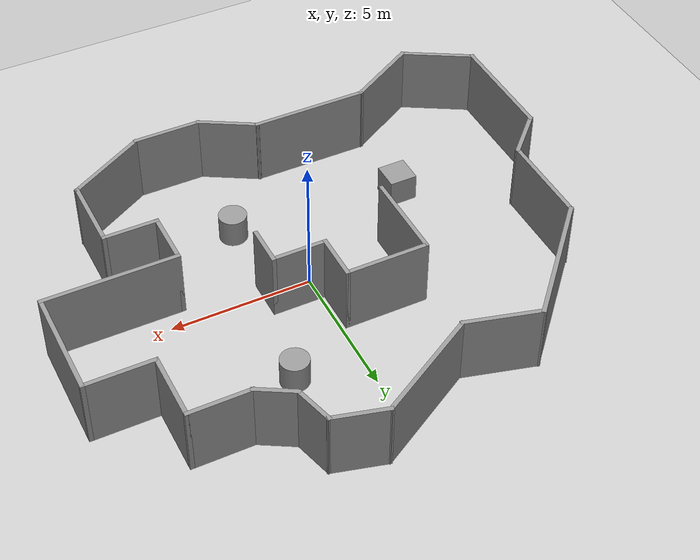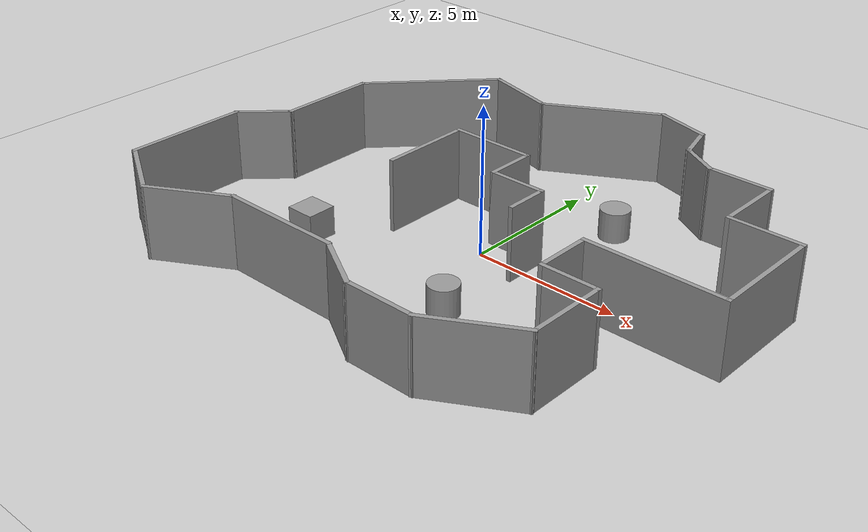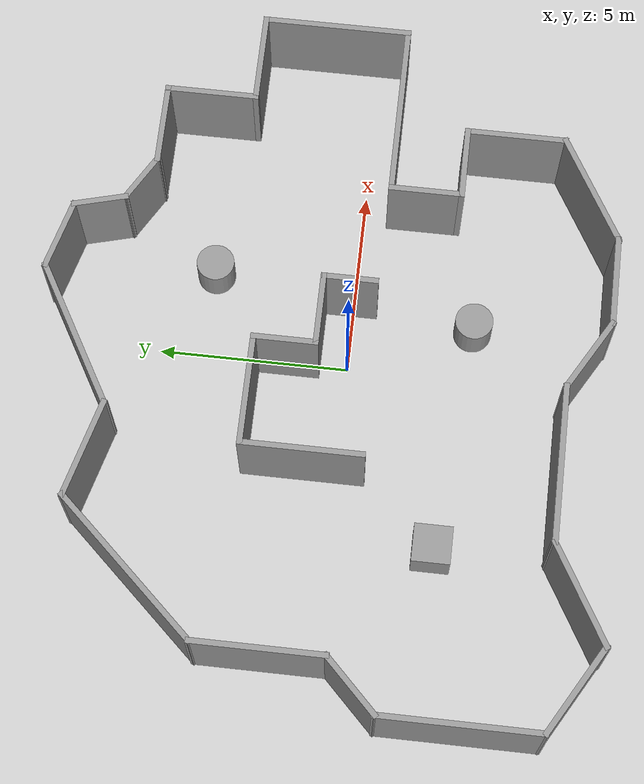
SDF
<sdf version="1.7">
 <world name="default">
  <light name="sun" type="directional">
   <pose>0 0 10 0 -0 0</pose>
   <diffuse>0.8 0.8 0.8 1</diffuse>
   <specular>0.2 0.2 0.2 1</specular>
   <attenuation>
    <range>1000</range>
    <constant>0.9</constant>
    <linear>0.01</linear>
    <quadratic>0.001</quadratic>
   </attenuation>
   <direction>-0.5 0.1 -0.9</direction>
   <spot><inner_angle>0</inner_angle><outer_angle>0</outer_angle><falloff>0</falloff></spot>
  </light>
  <model name="ground_plane">
   <static>1</static>
   <link name="link">
    <collision name="collision">
     <geometry><plane><normal>0 0 1</normal><size>100 100</size></plane></geometry>
     <surface>
      <contact><collide_bitmask>65535</collide_bitmask></contact>
      <friction><ode><mu>100</mu><mu2>50</mu2></ode></friction>
     </surface>
    </collision>
    <visual name="visual">
     <cast_shadows>0</cast_shadows>
     <geometry><plane><normal>0 0 1</normal><size>100 100</size></plane></geometry>
     <material>
      <script><uri>file://media/materials/scripts/gazebo.material</uri><name>Gazebo/Grey</name></script>
     </material>
    </visual>
   </link>
  </model>
  <gravity>0 0 -9.8</gravity>
  <magnetic_field>6e-06 2.3e-05 -4.2e-05</magnetic_field>
  <atmosphere type="adiabatic"/>
  <physics type="ode">
   <max_step_size>0.001</max_step_size>
   <real_time_factor>1</real_time_factor>
   <real_time_update_rate>1000</real_time_update_rate>
  </physics>
  <scene><ambient>0.4 0.4 0.4 1</ambient><background>0.7 0.7 0.7 1</background><shadows>1</shadows></scene>
  <spherical_coordinates>
   <surface_model>EARTH_WGS84</surface_model>
   <latitude_deg>0</latitude_deg>
   <longitude_deg>0</longitude_deg>
   <elevation>0</elevation>
   <heading_deg>0</heading_deg>
  </spherical_coordinates>
  <model name="model_11_1">
   <pose>-0.321834 0.458215 0 0 -0 0</pose>
   <link name="Wall_0">
    <collision name="Wall_0_Collision">
     <geometry><box><size>3.5 0.15 2.5</size></box></geometry>
     <pose>0 0 1.25 0 -0 0</pose>
    </collision>
    <visual name="Wall_0_Visual">
     <pose>0 0 1.25 0 -0 0</pose>
     <geometry><box><size>3.5 0.15 2.5</size></box></geometry>
     <material>
      <script><uri>file://media/materials/scripts/gazebo.material</uri><name>Gazebo/Grey</name></script>
      <ambient>1 1 1 1</ambient>
     </material>
     <meta><layer>0</layer></meta>
    </visual>
    <pose>-7.8879 0.86674 0 0 -0 -1.5708</pose>
   </link>
   <link name="Wall_1">
    <collision name="Wall_1_Collision">
     <geometry><box><size>2 0.15 2.5</size></box></geometry>
     <pose>0 0 1.25 0 -0 0</pose>
    </collision>
    <visual name="Wall_1_Visual">
     <pose>0 0 1.25 0 -0 0</pose>
     <geometry><box><size>2 0.15 2.5</size></box></geometry>
     <material>
      <script><uri>file://media/materials/scripts/gazebo.material</uri><name>Gazebo/Grey</name></script>
      <ambient>1 1 1 1</ambient>
     </material>
     <meta><layer>0</layer></meta>
    </visual>
    <pose>-8.54198 -1.46233 0 0 -0 -2.35619</pose>
   </link>
   <link name="Wall_10">
    <collision name="Wall_10_Collision">
     <geometry><box><size>2 0.15 2.5</size></box></geometry>
     <pose>0 0 1.25 0 -0 0</pose>
    </collision>
    <visual name="Wall_10_Visual">
     <pose>0 0 1.25 0 -0 0</pose>
     <geometry><box><size>2 0.15 2.5</size></box></geometry>
     <material>
      <script><uri>file://media/materials/scripts/gazebo.material</uri><name>Gazebo/Grey</name></script>
      <ambient>1 1 1 1</ambient>
     </material>
     <meta><layer>0</layer></meta>
    </visual>
    <pose>5.55212 -2.99141 0 0 -0 3.14159</pose>
   </link>
   <link name="Wall_11">
    <collision name="Wall_11_Collision">
     <geometry><box><size>2 0.15 2.5</size></box></geometry>
     <pose>0 0 1.25 0 -0 0</pose>
    </collision>
    <visual name="Wall_11_Visual">
     <pose>0 0 1.25 0 -0 0</pose>
     <geometry><box><size>2 0.15 2.5</size></box></geometry>
     <material>
      <script><uri>file://media/materials/scripts/gazebo.material</uri><name>Gazebo/Grey</name></script>
      <ambient>1 1 1 1</ambient>
     </material>
     <meta><layer>0</layer></meta>
    </visual>
    <pose>4.62712 -2.06641 0 0 -0 1.5708</pose>
   </link>
   <link name="Wall_12">
    <collision name="Wall_12_Collision">
     <geometry><box><size>4.75 0.15 2.5</size></box></geometry>
     <pose>0 0 1.25 0 -0 0</pose>
    </collision>
    <visual name="Wall_12_Visual">
     <pose>0 0 1.25 0 -0 0</pose>
     <geometry><box><size>4.75 0.15 2.5</size></box></geometry>
     <material>
      <script><uri>file://media/materials/scripts/gazebo.material</uri><name>Gazebo/Grey</name></script>
      <ambient>1 1 1 1</ambient>
     </material>
     <meta><layer>0</layer></meta>
    </visual>
    <pose>6.92712 -1.14141 0 0 -0 0</pose>
   </link>
   <link name="Wall_13">
    <collision name="Wall_13_Collision">
     <geometry><box><size>4 0.15 2.5</size></box></geometry>
     <pose>0 0 1.25 0 -0 0</pose>
    </collision>
    <visual name="Wall_13_Visual">
     <pose>0 0 1.25 0 -0 0</pose>
     <geometry><box><size>4 0.15 2.5</size></box></geometry>
     <material>
      <script><uri>file://media/materials/scripts/gazebo.material</uri><name>Gazebo/Grey</name></script>
      <ambient>1 1 1 1</ambient>
     </material>
     <meta><layer>0</layer></meta>
    </visual>
    <pose>9.22712 0.783592 0 0 -0 1.5708</pose>
   </link>
   <link name="Wall_14">
    <collision name="Wall_14_Collision">
     <geometry><box><size>2.5 0.15 2.5</size></box></geometry>
     <pose>0 0 1.25 0 -0 0</pose>
    </collision>
    <visual name="Wall_14_Visual">
     <pose>0 0 1.25 0 -0 0</pose>
     <geometry><box><size>2.5 0.15 2.5</size></box></geometry>
     <material>
      <script><uri>file://media/materials/scripts/gazebo.material</uri><name>Gazebo/Grey</name></script>
      <ambient>1 1 1 1</ambient>
     </material>
     <meta><layer>0</layer></meta>
    </visual>
    <pose>8.05212 2.70859 0 0 -0 3.14159</pose>
   </link>
   <link name="Wall_17">
    <collision name="Wall_17_Collision">
     <geometry><box><size>2.5 0.15 2.5</size></box></geometry>
     <pose>0 0 1.25 0 -0 0</pose>
    </collision>
    <visual name="Wall_17_Visual">
     <pose>0 0 1.25 0 -0 0</pose>
     <geometry><box><size>2.5 0.15 2.5</size></box></geometry>
     <material>
      <script><uri>file://media/materials/scripts/gazebo.material</uri><name>Gazebo/Grey</name></script>
      <ambient>1 1 1 1</ambient>
     </material>
     <meta><layer>0</layer></meta>
    </visual>
    <pose>6.87712 3.88359 0 0 -0 1.5708</pose>
   </link>
   <link name="Wall_18">
    <collision name="Wall_18_Collision">
     <geometry><box><size>2.25 0.15 2.5</size></box></geometry>
     <pose>0 0 1.25 0 -0 0</pose>
    </collision>
    <visual name="Wall_18_Visual">
     <pose>0 0 1.25 0 -0 0</pose>
     <geometry><box><size>2.25 0.15 2.5</size></box></geometry>
     <material>
      <script><uri>file://media/materials/scripts/gazebo.material</uri><name>Gazebo/Grey</name></script>
      <ambient>1 1 1 1</ambient>
     </material>
     <meta><layer>0</layer></meta>
    </visual>
    <pose>5.82712 5.05859 0 0 -0 3.14159</pose>
   </link>
   <link name="Wall_19">
    <collision name="Wall_19_Collision">
     <geometry><box><size>1.5 0.15 2.5</size></box></geometry>
     <pose>0 0 1.25 0 -0 0</pose>
    </collision>
    <visual name="Wall_19_Visual">
     <pose>0 0 1.25 0 -0 0</pose>
     <geometry><box><size>1.5 0.15 2.5</size></box></geometry>
     <material>
      <script><uri>file://media/materials/scripts/gazebo.material</uri><name>Gazebo/Grey</name></script>
      <ambient>1 1 1 1</ambient>
     </material>
     <meta><layer>0</layer></meta>
    </visual>
    <pose>4.19255 5.39609 0 0 -0 2.61799</pose>
   </link>
   <link name="Wall_2">
    <collision name="Wall_2_Collision">
     <geometry><box><size>4.25 0.15 2.5</size></box></geometry>
     <pose>0 0 1.25 0 -0 0</pose>
    </collision>
    <visual name="Wall_2_Visual">
     <pose>0 0 1.25 0 -0 0</pose>
     <geometry><box><size>4.25 0.15 2.5</size></box></geometry>
     <material>
      <script><uri>file://media/materials/scripts/gazebo.material</uri><name>Gazebo/Grey</name></script>
      <ambient>1 1 1 1</ambient>
     </material>
     <meta><layer>0</layer></meta>
    </visual>
    <pose>-9.19605 -4.16641 0 0 -0 -1.5708</pose>
   </link>
   <link name="Wall_21">
    <collision name="Wall_21_Collision">
     <geometry><box><size>1.5 0.15 2.5</size></box></geometry>
     <pose>0 0 1.25 0 -0 0</pose>
    </collision>
    <visual name="Wall_21_Visual">
     <pose>0 0 1.25 0 -0 0</pose>
     <geometry><box><size>1.5 0.15 2.5</size></box></geometry>
     <material>
      <script><uri>file://media/materials/scripts/gazebo.material</uri><name>Gazebo/Grey</name></script>
      <ambient>1 1 1 1</ambient>
     </material>
     <meta><layer>0</layer></meta>
    </visual>
    <pose>3.43328 6.38559 0 0 -0 1.8326</pose>
   </link>
   <link name="Wall_22">
    <collision name="Wall_22_Collision">
     <geometry><box><size>2 0.15 2.5</size></box></geometry>
     <pose>0 0 1.25 0 -0 0</pose>
    </collision>
    <visual name="Wall_22_Visual">
     <pose>0 0 1.25 0 -0 0</pose>
     <geometry><box><size>2 0.15 2.5</size></box></geometry>
     <material>
      <script><uri>file://media/materials/scripts/gazebo.material</uri><name>Gazebo/Grey</name></script>
      <ambient>1 1 1 1</ambient>
     </material>
     <meta><layer>0</layer></meta>
    </visual>
    <pose>2.3651 7.277 0 0 -0 2.87979</pose>
   </link>
   <link name="Wall_23">
    <collision name="Wall_23_Collision">
     <geometry><box><size>4.25 0.15 2.5</size></box></geometry>
     <pose>0 0 1.25 0 -0 0</pose>
    </collision>
    <visual name="Wall_23_Visual">
     <pose>0 0 1.25 0 -0 0</pose>
     <geometry><box><size>4.25 0.15 2.5</size></box></geometry>
     <material>
      <script><uri>file://media/materials/scripts/gazebo.material</uri><name>Gazebo/Grey</name></script>
      <ambient>1 1 1 1</ambient>
     </material>
     <meta><layer>0</layer></meta>
    </visual>
    <pose>-0.303736 6.49141 0 0 -0 -2.61799</pose>
   </link>
   <link name="Wall_24">
    <collision name="Wall_24_Collision">
     <geometry><box><size>2.75 0.15 2.5</size></box></geometry>
     <pose>0 0 1.25 0 -0 0</pose>
    </collision>
    <visual name="Wall_24_Visual">
     <pose>0 0 1.25 0 -0 0</pose>
     <geometry><box><size>2.75 0.15 2.5</size></box></geometry>
     <material>
      <script><uri>file://media/materials/scripts/gazebo.material</uri><name>Gazebo/Grey</name></script>
      <ambient>1 1 1 1</ambient>
     </material>
     <meta><layer>0</layer></meta>
    </visual>
    <pose>-3.33479 5.80287 0 0 -0 2.87979</pose>
   </link>
   <link name="Wall_25">
    <collision name="Wall_25_Collision">
     <geometry><box><size>5.03012 0.15 2.5</size></box></geometry>
     <pose>0 0 1.25 0 -0 0</pose>
    </collision>
    <visual name="Wall_25_Visual">
     <pose>0 0 1.25 0 -0 0</pose>
     <geometry><box><size>5.03012 0.15 2.5</size></box></geometry>
     <material>
      <script><uri>file://media/materials/scripts/gazebo.material</uri><name>Gazebo/Grey</name></script>
      <ambient>1 1 1 1</ambient>
     </material>
     <meta><layer>0</layer></meta>
    </visual>
    <pose>-6.2392 4.34054 0 0 -0 -2.31269</pose>
   </link>
   <link name="Wall_27">
    <collision name="Wall_27_Collision">
     <geometry><box><size>3.25 0.15 2.5</size></box></geometry>
     <pose>0 0 1.25 0 -0 0</pose>
    </collision>
    <visual name="Wall_27_Visual">
     <pose>0 0 1.25 0 -0 0</pose>
     <geometry><box><size>3.25 0.15 2.5</size></box></geometry>
     <material>
      <script><uri>file://media/materials/scripts/gazebo.material</uri><name>Gazebo/Grey</name></script>
      <ambient>1 1 1 1</ambient>
     </material>
     <meta><layer>0</layer></meta>
    </visual>
    <pose>-2.74909 0.391399 0 0 -0 1.5708</pose>
   </link>
   <link name="Wall_28">
    <collision name="Wall_28_Collision">
     <geometry><box><size>3 0.15 2.5</size></box></geometry>
     <pose>0 0 1.25 0 -0 0</pose>
    </collision>
    <visual name="Wall_28_Visual">
     <pose>0 0 1.25 0 -0 0</pose>
     <geometry><box><size>3 0.15 2.5</size></box></geometry>
     <material>
      <script><uri>file://media/materials/scripts/gazebo.material</uri><name>Gazebo/Grey</name></script>
      <ambient>1 1 1 1</ambient>
     </material>
     <meta><layer>0</layer></meta>
    </visual>
    <pose>-1.32409 1.9414 0 0 -0 0</pose>
   </link>
   <link name="Wall_29">
    <collision name="Wall_29_Collision">
     <geometry><box><size>1.75 0.15 2.5</size></box></geometry>
     <pose>0 0 1.25 0 -0 0</pose>
    </collision>
    <visual name="Wall_29_Visual">
     <pose>0 0 1.25 0 -0 0</pose>
     <geometry><box><size>1.75 0.15 2.5</size></box></geometry>
     <material>
      <script><uri>file://media/materials/scripts/gazebo.material</uri><name>Gazebo/Grey</name></script>
      <ambient>1 1 1 1</ambient>
     </material>
     <meta><layer>0</layer></meta>
    </visual>
    <pose>0.100909 1.1414 0 0 -0 -1.5708</pose>
   </link>
   <link name="Wall_3">
    <collision name="Wall_3_Collision">
     <geometry><box><size>2.75 0.15 2.5</size></box></geometry>
     <pose>0 0 1.25 0 -0 0</pose>
    </collision>
    <visual name="Wall_3_Visual">
     <pose>0 0 1.25 0 -0 0</pose>
     <geometry><box><size>2.75 0.15 2.5</size></box></geometry>
     <material>
      <script><uri>file://media/materials/scripts/gazebo.material</uri><name>Gazebo/Grey</name></script>
      <ambient>1 1 1 1</ambient>
     </material>
     <meta><layer>0</layer></meta>
    </visual>
    <pose>-8.07022 -6.86641 0 0 -0 -0.523599</pose>
   </link>
   <link name="Wall_30">
    <collision name="Wall_30_Collision">
     <geometry><box><size>2 0.15 2.5</size></box></geometry>
     <pose>0 0 1.25 0 -0 0</pose>
    </collision>
    <visual name="Wall_30_Visual">
     <pose>0 0 1.25 0 -0 0</pose>
     <geometry><box><size>2 0.15 2.5</size></box></geometry>
     <material>
      <script><uri>file://media/materials/scripts/gazebo.material</uri><name>Gazebo/Grey</name></script>
      <ambient>1 1 1 1</ambient>
     </material>
     <meta><layer>0</layer></meta>
    </visual>
    <pose>1.02591 0.341399 0 0 -0 0</pose>
   </link>
   <link name="Wall_31">
    <collision name="Wall_31_Collision">
     <geometry><box><size>1.5 0.15 2.5</size></box></geometry>
     <pose>0 0 1.25 0 -0 0</pose>
    </collision>
    <visual name="Wall_31_Visual">
     <pose>0 0 1.25 0 -0 0</pose>
     <geometry><box><size>1.5 0.15 2.5</size></box></geometry>
     <material>
      <script><uri>file://media/materials/scripts/gazebo.material</uri><name>Gazebo/Grey</name></script>
      <ambient>1 1 1 1</ambient>
     </material>
     <meta><layer>0</layer></meta>
    </visual>
    <pose>1.95091 -0.333601 0 0 -0 -1.5708</pose>
   </link>
   <link name="Wall_4">
    <collision name="Wall_4_Collision">
     <geometry><box><size>3 0.15 2.5</size></box></geometry>
     <pose>0 0 1.25 0 -0 0</pose>
    </collision>
    <visual name="Wall_4_Visual">
     <pose>0 0 1.25 0 -0 0</pose>
     <geometry><box><size>3 0.15 2.5</size></box></geometry>
     <material>
      <script><uri>file://media/materials/scripts/gazebo.material</uri><name>Gazebo/Grey</name></script>
      <ambient>1 1 1 1</ambient>
     </material>
     <meta><layer>0</layer></meta>
    </visual>
    <pose>-5.7103 -6.80391 0 0 -0 0.523599</pose>
   </link>
   <link name="Wall_5">
    <collision name="Wall_5_Collision">
     <geometry><box><size>4.25 0.15 2.5</size></box></geometry>
     <pose>0 0 1.25 0 -0 0</pose>
    </collision>
    <visual name="Wall_5_Visual">
     <pose>0 0 1.25 0 -0 0</pose>
     <geometry><box><size>4.25 0.15 2.5</size></box></geometry>
     <material>
      <script><uri>file://media/materials/scripts/gazebo.material</uri><name>Gazebo/Grey</name></script>
      <ambient>1 1 1 1</ambient>
     </material>
     <meta><layer>0</layer></meta>
    </visual>
    <pose>-2.42621 -6.09141 0 0 -0 0</pose>
   </link>
   <link name="Wall_6">
    <collision name="Wall_6_Collision">
     <geometry><box><size>2.25 0.15 2.5</size></box></geometry>
     <pose>0 0 1.25 0 -0 0</pose>
    </collision>
    <visual name="Wall_6_Visual">
     <pose>0 0 1.25 0 -0 0</pose>
     <geometry><box><size>2.25 0.15 2.5</size></box></geometry>
     <material>
      <script><uri>file://media/materials/scripts/gazebo.material</uri><name>Gazebo/Grey</name></script>
      <ambient>1 1 1 1</ambient>
     </material>
     <meta><layer>0</layer></meta>
    </visual>
    <pose>0.533113 -6.61641 0 0 -0 -0.523599</pose>
   </link>
   <link name="Wall_7">
    <collision name="Wall_7_Collision">
     <geometry><box><size>2.5 0.15 2.5</size></box></geometry>
     <pose>0 0 1.25 0 -0 0</pose>
    </collision>
    <visual name="Wall_7_Visual">
     <pose>0 0 1.25 0 -0 0</pose>
     <geometry><box><size>2.5 0.15 2.5</size></box></geometry>
     <material>
      <script><uri>file://media/materials/scripts/gazebo.material</uri><name>Gazebo/Grey</name></script>
      <ambient>1 1 1 1</ambient>
     </material>
     <meta><layer>0</layer></meta>
    </visual>
    <pose>2.61744 -7.14141 0 0 -0 0</pose>
   </link>
   <link name="Wall_8">
    <collision name="Wall_8_Collision">
     <geometry><box><size>3.25 0.15 2.5</size></box></geometry>
     <pose>0 0 1.25 0 -0 0</pose>
    </collision>
    <visual name="Wall_8_Visual">
     <pose>0 0 1.25 0 -0 0</pose>
     <geometry><box><size>3.25 0.15 2.5</size></box></geometry>
     <material>
      <script><uri>file://media/materials/scripts/gazebo.material</uri><name>Gazebo/Grey</name></script>
      <ambient>1 1 1 1</ambient>
     </material>
     <meta><layer>0</layer></meta>
    </visual>
    <pose>5.13478 -6.36641 0 0 -0 0.523599</pose>
   </link>
   <link name="Wall_9">
    <collision name="Wall_9_Collision">
     <geometry><box><size>2.75 0.15 2.5</size></box></geometry>
     <pose>0 0 1.25 0 -0 0</pose>
    </collision>
    <visual name="Wall_9_Visual">
     <pose>0 0 1.25 0 -0 0</pose>
     <geometry><box><size>2.75 0.15 2.5</size></box></geometry>
     <material>
      <script><uri>file://media/materials/scripts/gazebo.material</uri><name>Gazebo/Grey</name></script>
      <ambient>1 1 1 1</ambient>
     </material>
     <meta><layer>0</layer></meta>
    </visual>
    <pose>6.47712 -4.29141 0 0 -0 1.5708</pose>
   </link>
   <static>1</static>
  </model>
  <model name="unit_box">
   <pose>-4.75849 -2.66914 0.499995 0 -1e-05 0</pose>
   <link name="link">
    <inertial>
     <mass>1</mass>
     <inertia>
      <ixx>0.166667</ixx>
      <ixy>0</ixy>
      <ixz>0</ixz>
      <iyy>0.166667</iyy>
      <iyz>0</iyz>
      <izz>0.166667</izz>
     </inertia>
    </inertial>
    <collision name="collision"><geometry><box><size>1 1 1</size></box></geometry></collision>
    <visual name="visual">
     <geometry><box><size>1 1 1</size></box></geometry>
     <material>
      <script><name>Gazebo/Grey</name><uri>file://media/materials/scripts/gazebo.material</uri></script>
     </material>
    </visual>
   </link>
  </model>
  <model name="unit_cylinder">
   <pose>1.38342 -3.21064 0.499997 3e-06 4e-06 -0</pose>
   <link name="link">
    <inertial>
     <mass>1</mass>
     <inertia><ixx>0.145833</ixx><ixy>0</ixy><ixz>0</ixz><iyy>0.145833</iyy><iyz>0</iyz><izz>0.125</izz></inertia>
    </inertial>
    <collision name="collision">
     <geometry><cylinder><radius>0.5</radius><length>1</length></cylinder></geometry>
    </collision>
    <visual name="visual">
     <geometry><cylinder><radius>0.5</radius><length>1</length></cylinder></geometry>
     <material>
      <script><name>Gazebo/Grey</name><uri>file://media/materials/scripts/gazebo.material</uri></script>
     </material>
    </visual>
   </link>
  </model>
  <light name="user_point_light_0" type="point">
   <pose>52.8514 118.747 1 0 -0 0</pose>
   <diffuse>0.5 0.5 0.5 1</diffuse>
   <specular>0.1 0.1 0.1 1</specular>
   <attenuation>
    <range>20</range>
    <constant>0.5</constant>
    <linear>0.01</linear>
    <quadratic>0.001</quadratic>
   </attenuation>
   <cast_shadows>0</cast_shadows>
   <direction>0 0 -1</direction>
  </light>
  <model name="unit_cylinder_0">
   <pose>2.30689 3.7755 0.499997 3e-06 4e-06 -0</pose>
   <link name="link">
    <inertial>
     <mass>1</mass>
     <inertia><ixx>0.145833</ixx><ixy>0</ixy><ixz>0</ixz><iyy>0.145833</iyy><iyz>0</iyz><izz>0.125</izz></inertia>
    </inertial>
    <collision name="collision">
     <geometry><cylinder><radius>0.5</radius><length>1</length></cylinder></geometry>
    </collision>
    <visual name="visual">
     <geometry><cylinder><radius>0.5</radius><length>1</length></cylinder></geometry>
     <material>
      <script><name>Gazebo/Grey</name><uri>file://media/materials/scripts/gazebo.material</uri></script>
     </material>
    </visual>
   </link>
  </model>
 </world>
</sdf>
